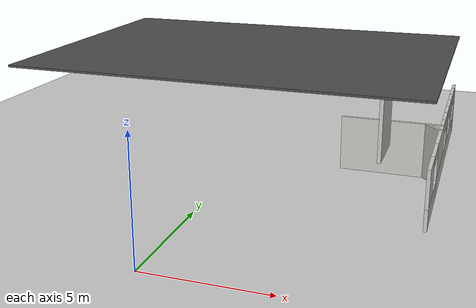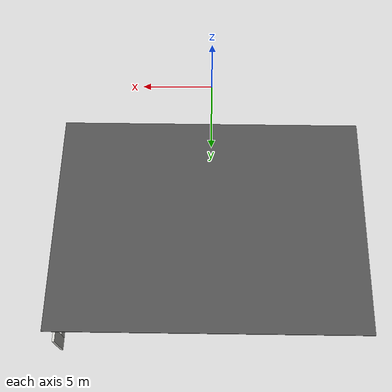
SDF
<sdf version="1.6">
 <world name="default">
  <model name="ground_plane">
   <static>1</static>
   <link name="link">
    <collision name="collision">
     <geometry><plane><normal>0 0 1</normal><size>100 100</size></plane></geometry>
     <surface>
      <contact><collide_bitmask>65535</collide_bitmask></contact>
      <friction><ode><mu>100</mu><mu2>50</mu2></ode></friction>
     </surface>
    </collision>
    <visual name="visual">
     <cast_shadows>0</cast_shadows>
     <geometry><plane><normal>0 0 1</normal><size>100 100</size></plane></geometry>
     <material>
      <script><uri>file://media/materials/scripts/gazebo.material</uri><name>Gazebo/Grey</name></script>
     </material>
    </visual>
   </link>
  </model>
  <model name="asphalt_plane">
   <static>1</static>
   <link name="link">
    <collision name="collision"><geometry><box><size>18.0246 12.9845 0.1</size></box></geometry></collision>
    <visual name="visual">
     <cast_shadows>0</cast_shadows>
     <geometry><box><size>18.0246 12.9845 0.1</size></box></geometry>
     <material>
      <script>
       <uri>model://asphalt_plane/materials/scripts</uri>
       <uri>model://asphalt_plane/materials/textures</uri>
       <name>vrc/asphalt</name>
      </script>
     </material>
    </visual>
   </link>
   <pose>0.009253 12.617 5.05625 0 -0 0</pose>
  </model>
  <model name="Indoor_Scenario1">
   <pose>0.016123 12.6195 0 0 -0 0</pose>
   <link name="Wall_3">
    <pose>8.925 -0 0 0 -0 -1.5708</pose>
    <visual name="Wall_3_Visual_0">
     <pose>-6.13698 0 1.25 0 -0 0</pose>
     <geometry><box><size>0.726032 0.15 2.5</size></box></geometry>
     <material>
      <script><uri>file://media/materials/scripts/gazebo.material</uri><name>Gazebo/CeilingTiled</name></script>
      <ambient>0.647059 0.505882 0.309804 1</ambient>
     </material>
     <meta><layer>0</layer></meta>
    </visual>
    <collision name="Wall_3_Collision_0">
     <geometry><box><size>0.726032 0.15 2.5</size></box></geometry>
     <pose>-6.13698 0 1.25 0 -0 0</pose>
    </collision>
    <visual name="Wall_3_Visual_1">
     <pose>-1.17837 0 0.45 0 -0 0</pose>
     <geometry><box><size>9.1912 0.15 0.9</size></box></geometry>
     <material>
      <script><uri>file://media/materials/scripts/gazebo.material</uri><name>Gazebo/CeilingTiled</name></script>
      <ambient>0.647059 0.505882 0.309804 1</ambient>
     </material>
     <meta><layer>0</layer></meta>
    </visual>
    <collision name="Wall_3_Collision_1">
     <geometry><box><size>9.1912 0.15 0.9</size></box></geometry>
     <pose>-1.17837 0 0.45 0 -0 0</pose>
    </collision>
    <visual name="Wall_3_Visual_2">
     <pose>4.95862 0 0.45 0 -0 0</pose>
     <geometry><box><size>3.08277 0.15 0.9</size></box></geometry>
     <material>
      <script><uri>file://media/materials/scripts/gazebo.material</uri><name>Gazebo/CeilingTiled</name></script>
      <ambient>0.647059 0.505882 0.309804 1</ambient>
     </material>
     <meta><layer>0</layer></meta>
    </visual>
    <collision name="Wall_3_Collision_2">
     <geometry><box><size>3.08277 0.15 0.9</size></box></geometry>
     <pose>4.95862 0 0.45 0 -0 0</pose>
    </collision>
    <visual name="Wall_3_Visual_3">
     <pose>5.75862 0 1.7 0 -0 0</pose>
     <geometry><box><size>1.48277 0.15 1.6</size></box></geometry>
     <material>
      <script><uri>file://media/materials/scripts/gazebo.material</uri><name>Gazebo/CeilingTiled</name></script>
      <ambient>0.647059 0.505882 0.309804 1</ambient>
     </material>
     <meta><layer>0</layer></meta>
    </visual>
    <collision name="Wall_3_Collision_3">
     <geometry><box><size>1.48277 0.15 1.6</size></box></geometry>
     <pose>5.75862 0 1.7 0 -0 0</pose>
    </collision>
    <visual name="Wall_3_Visual_4">
     <pose>-4.02683 0 1.7 0 -0 0</pose>
     <geometry><box><size>1.09427 0.15 1.6</size></box></geometry>
     <material>
      <script><uri>file://media/materials/scripts/gazebo.material</uri><name>Gazebo/CeilingTiled</name></script>
      <ambient>0.647059 0.505882 0.309804 1</ambient>
     </material>
     <meta><layer>0</layer></meta>
    </visual>
    <collision name="Wall_3_Collision_4">
     <geometry><box><size>1.09427 0.15 1.6</size></box></geometry>
     <pose>-4.02683 0 1.7 0 -0 0</pose>
    </collision>
    <visual name="Wall_3_Visual_5">
     <pose>-1.73257 0 1.7 0 -0 0</pose>
     <geometry><box><size>1.09427 0.15 1.6</size></box></geometry>
     <material>
      <script><uri>file://media/materials/scripts/gazebo.material</uri><name>Gazebo/CeilingTiled</name></script>
      <ambient>0.647059 0.505882 0.309804 1</ambient>
     </material>
     <meta><layer>0</layer></meta>
    </visual>
    <collision name="Wall_3_Collision_5">
     <geometry><box><size>1.09427 0.15 1.6</size></box></geometry>
     <pose>-1.73257 0 1.7 0 -0 0</pose>
    </collision>
    <visual name="Wall_3_Visual_6">
     <pose>1.7159 0 1.7 0 -0 0</pose>
     <geometry><box><size>3.40267 0.15 1.6</size></box></geometry>
     <material>
      <script><uri>file://media/materials/scripts/gazebo.material</uri><name>Gazebo/CeilingTiled</name></script>
      <ambient>0.647059 0.505882 0.309804 1</ambient>
     </material>
     <meta><layer>0</layer></meta>
    </visual>
    <collision name="Wall_3_Collision_6">
     <geometry><box><size>3.40267 0.15 1.6</size></box></geometry>
     <pose>1.7159 0 1.7 0 -0 0</pose>
    </collision>
    <visual name="Wall_3_Visual_7">
     <pose>1.7159 0 1.7 0 -0 0</pose>
     <geometry><box><size>3.40267 0.15 1.6</size></box></geometry>
     <material>
      <script><uri>file://media/materials/scripts/gazebo.material</uri><name>Gazebo/CeilingTiled</name></script>
      <ambient>0.647059 0.505882 0.309804 1</ambient>
     </material>
     <meta><layer>0</layer></meta>
    </visual>
    <collision name="Wall_3_Collision_7">
     <geometry><box><size>3.40267 0.15 1.6</size></box></geometry>
     <pose>1.7159 0 1.7 0 -0 0</pose>
    </collision>
    <visual name="Wall_3_Visual_8">
     <pose>-5.17397 0 2.15 0 -0 0</pose>
     <geometry><box><size>1.2 0.15 0.7</size></box></geometry>
     <material>
      <script><uri>file://media/materials/scripts/gazebo.material</uri><name>Gazebo/CeilingTiled</name></script>
      <ambient>0.647059 0.505882 0.309804 1</ambient>
     </material>
     <meta><layer>0</layer></meta>
    </visual>
    <collision name="Wall_3_Collision_8">
     <geometry><box><size>1.2 0.15 0.7</size></box></geometry>
     <pose>-5.17397 0 2.15 0 -0 0</pose>
    </collision>
    <visual name="Wall_3_Visual_9">
     <pose>-2.8797 0 2.15 0 -0 0</pose>
     <geometry><box><size>1.2 0.15 0.7</size></box></geometry>
     <material>
      <script><uri>file://media/materials/scripts/gazebo.material</uri><name>Gazebo/CeilingTiled</name></script>
      <ambient>0.647059 0.505882 0.309804 1</ambient>
     </material>
     <meta><layer>0</layer></meta>
    </visual>
    <collision name="Wall_3_Collision_9">
     <geometry><box><size>1.2 0.15 0.7</size></box></geometry>
     <pose>-2.8797 0 2.15 0 -0 0</pose>
    </collision>
    <visual name="Wall_3_Visual_10">
     <pose>-0.585434 0 2.15 0 -0 0</pose>
     <geometry><box><size>1.2 0.15 0.7</size></box></geometry>
     <material>
      <script><uri>file://media/materials/scripts/gazebo.material</uri><name>Gazebo/CeilingTiled</name></script>
      <ambient>0.647059 0.505882 0.309804 1</ambient>
     </material>
     <meta><layer>0</layer></meta>
    </visual>
    <collision name="Wall_3_Collision_10">
     <geometry><box><size>1.2 0.15 0.7</size></box></geometry>
     <pose>-0.585434 0 2.15 0 -0 0</pose>
    </collision>
    <visual name="Wall_3_Visual_11">
     <pose>4.21723 0 2.25 0 -0 0</pose>
     <geometry><box><size>1.6 0.15 0.5</size></box></geometry>
     <material>
      <script><uri>file://media/materials/scripts/gazebo.material</uri><name>Gazebo/CeilingTiled</name></script>
      <ambient>0.647059 0.505882 0.309804 1</ambient>
     </material>
     <meta><layer>0</layer></meta>
    </visual>
    <collision name="Wall_3_Collision_11">
     <geometry><box><size>1.6 0.15 0.5</size></box></geometry>
     <pose>4.21723 0 2.25 0 -0 0</pose>
    </collision>
    <visual name="Wall_3_Visual_12">
     <pose>4.21723 0 2.25 0 -0 0</pose>
     <geometry><box><size>1.6 0.15 0.5</size></box></geometry>
     <material>
      <script><uri>file://media/materials/scripts/gazebo.material</uri><name>Gazebo/CeilingTiled</name></script>
      <ambient>0.647059 0.505882 0.309804 1</ambient>
     </material>
     <meta><layer>0</layer></meta>
    </visual>
    <collision name="Wall_3_Collision_12">
     <geometry><box><size>1.6 0.15 0.5</size></box></geometry>
     <pose>4.21723 0 2.25 0 -0 0</pose>
    </collision>
   </link>
   <link name="Wall_42">
    <collision name="Wall_42_Collision">
     <geometry><box><size>4.5 0.15 2.5</size></box></geometry>
     <pose>0 0 1.25 0 -0 0</pose>
    </collision>
    <visual name="Wall_42_Visual">
     <pose>0 0 1.25 0 -0 0</pose>
     <geometry><box><size>4.5 0.15 2.5</size></box></geometry>
     <material>
      <script><uri>file://media/materials/scripts/gazebo.material</uri><name>Gazebo/CeilingTiled</name></script>
      <ambient>1 1 1 1</ambient>
     </material>
     <meta><layer>0</layer></meta>
    </visual>
    <pose>6.74627 -0.890762 0 0 -0 3.14159</pose>
   </link>
   <link name="Wall_46">
    <collision name="Wall_46_Collision">
     <geometry><box><size>1 0.15 2.5</size></box></geometry>
     <pose>0 0 1.25 0 -0 0</pose>
    </collision>
    <visual name="Wall_46_Visual">
     <pose>0 0 1.25 0 -0 0</pose>
     <geometry><box><size>1 0.15 2.5</size></box></geometry>
     <material>
      <script><uri>file://media/materials/scripts/gazebo.material</uri><name>Gazebo/CeilingTiled</name></script>
      <ambient>1 1 1 1</ambient>
     </material>
     <meta><layer>0</layer></meta>
    </visual>
    <pose>8.59215 -1.24375 0 0 -0 -0.785398</pose>
   </link>
   <link name="Wall_84">
    <collision name="Wall_84_Collision">
     <geometry><box><size>2.25 0.15 2.5</size></box></geometry>
     <pose>0 0 1.25 0 -0 0</pose>
    </collision>
    <visual name="Wall_84_Visual">
     <pose>0 0 1.25 0 -0 0</pose>
     <geometry><box><size>2.25 0.15 2.5</size></box></geometry>
     <material>
      <script><uri>file://media/materials/scripts/gazebo.material</uri><name>Gazebo/CeilingTiled</name></script>
      <ambient>1 1 1 1</ambient>
     </material>
     <meta><layer>1</layer></meta>
    </visual>
    <pose>7.06066 -5.30727 2.5 0 -0 1.5708</pose>
   </link>
   <static>1</static>
  </model>
  <model name="marker21_box">
   <link name="marker">
    <inertial>
     <mass>0.1</mass>
     <inertia><ixx>0</ixx><ixy>0</ixy><ixz>0</ixz><iyy>0</iyy><iyz>0</iyz><izz>0</izz></inertia>
    </inertial>
    <self_collide>1</self_collide>
    <pose>0 0 0.25 0 -0 0</pose>
    <visual name="visual">
     <geometry><box><size>1 0.001 1</size></box></geometry>
     <material>
      <script>
       <uri>/root/model_editor_models/marker21/material/scripts</uri>
       <uri>/root/model_editor_models/marker21/material/textures</uri>
       <name>Aruco/marker21</name>
      </script>
      <shader type="pixel"><normal_map>__default__</normal_map></shader>
      <emissive>0 0 0 1</emissive>
      <ambient>1 1 1 1</ambient>
      <diffuse>1 1 1 1</diffuse>
      <specular>0 0 0 1</specular>
     </material>
    </visual>
    <collision name="collision">
     <geometry><box><size>1 0.001 1</size></box></geometry>
     <surface>
      <friction>
       <ode><mu>1</mu><mu2>1</mu2><fdir1>0 0 0</fdir1><slip1>0</slip1><slip2>0</slip2></ode>
       <torsional>
        <coefficient>1</coefficient>
        <patch_radius>0</patch_radius>
        <surface_radius>0</surface_radius>
        <use_patch_radius>1</use_patch_radius>
        <ode><slip>0</slip></ode>
       </torsional>
      </friction>
      <bounce><restitution_coefficient>0</restitution_coefficient><threshold>1e+06</threshold></bounce>
      <contact>
       <collide_without_contact>0</collide_without_contact>
       <collide_without_contact_bitmask>1</collide_without_contact_bitmask>
       <collide_bitmask>1</collide_bitmask>
       <ode>
        <soft_cfm>0</soft_cfm>
        <soft_erp>0.2</soft_erp>
        <kp>1e+13</kp>
        <kd>1</kd>
        <max_vel>0.01</max_vel>
        <min_depth>0</min_depth>
       </ode>
       <bullet>
        <split_impulse>1</split_impulse>
        <split_impulse_penetration_threshold>-0.01</split_impulse_penetration_threshold>
        <soft_cfm>0</soft_cfm>
        <soft_erp>0.2</soft_erp>
        <kp>1e+13</kp>
        <kd>1</kd>
       </bullet>
      </contact>
     </surface>
    </collision>
   </link>
   <link name="link_1">
    <inertial>
     <mass>1</mass>
     <inertia>
      <ixx>0.166667</ixx>
      <ixy>0</ixy>
      <ixz>0</ixz>
      <iyy>0.166667</iyy>
      <iyz>0</iyz>
      <izz>0.166667</izz>
     </inertia>
    </inertial>
    <pose>0 0.11 0.25 0 -0 0</pose>
    <visual name="visual">
     <geometry><box><size>1 0.2 1</size></box></geometry>
     <material>
      <lighting>1</lighting>
      <script><uri>file://media/materials/scripts/gazebo.material</uri><name>Gazebo/Grey</name></script>
      <shader type="pixel"><normal_map>__default__</normal_map></shader>
      <emissive>0 0 0 1</emissive>
      <ambient>0.3 0.3 0.3 1</ambient>
      <diffuse>0.7 0.7 0.7 1</diffuse>
      <specular>0.01 0.01 0.01 1</specular>
     </material>
    </visual>
    <collision name="collision">
     <geometry><box><size>1 0.2 1</size></box></geometry>
     <surface>
      <friction>
       <ode><mu>1</mu><mu2>1</mu2><fdir1>0 0 0</fdir1><slip1>0</slip1><slip2>0</slip2></ode>
       <torsional>
        <coefficient>1</coefficient>
        <patch_radius>0</patch_radius>
        <surface_radius>0</surface_radius>
        <use_patch_radius>1</use_patch_radius>
        <ode><slip>0</slip></ode>
       </torsional>
      </friction>
      <bounce><restitution_coefficient>0</restitution_coefficient><threshold>1e+06</threshold></bounce>
      <contact>
       <collide_without_contact>0</collide_without_contact>
       <collide_without_contact_bitmask>1</collide_without_contact_bitmask>
       <collide_bitmask>1</collide_bitmask>
       <ode>
        <soft_cfm>0</soft_cfm>
        <soft_erp>0.2</soft_erp>
        <kp>1e+13</kp>
        <kd>1</kd>
        <max_vel>0.01</max_vel>
        <min_depth>0</min_depth>
       </ode>
       <bullet>
        <split_impulse>1</split_impulse>
        <split_impulse_penetration_threshold>-0.01</split_impulse_penetration_threshold>
        <soft_cfm>0</soft_cfm>
        <soft_erp>0.2</soft_erp>
        <kp>1e+13</kp>
        <kd>1</kd>
       </bullet>
      </contact>
     </surface>
    </collision>
   </link>
   <joint name="link_1_JOINT_3" type="fixed">
    <parent>link_1</parent>
    <child>marker</child>
    <physics>
     <ode><limit><cfm>0</cfm><erp>0.2</erp></limit><suspension><cfm>0</cfm><erp>0.2</erp></suspension></ode>
    </physics>
   </joint>
   <static>0</static>
   <pose>8.23598 12.0635 0.299998 0 -3e-06 -3.13635</pose>
  </model>
 </world>
</sdf>
